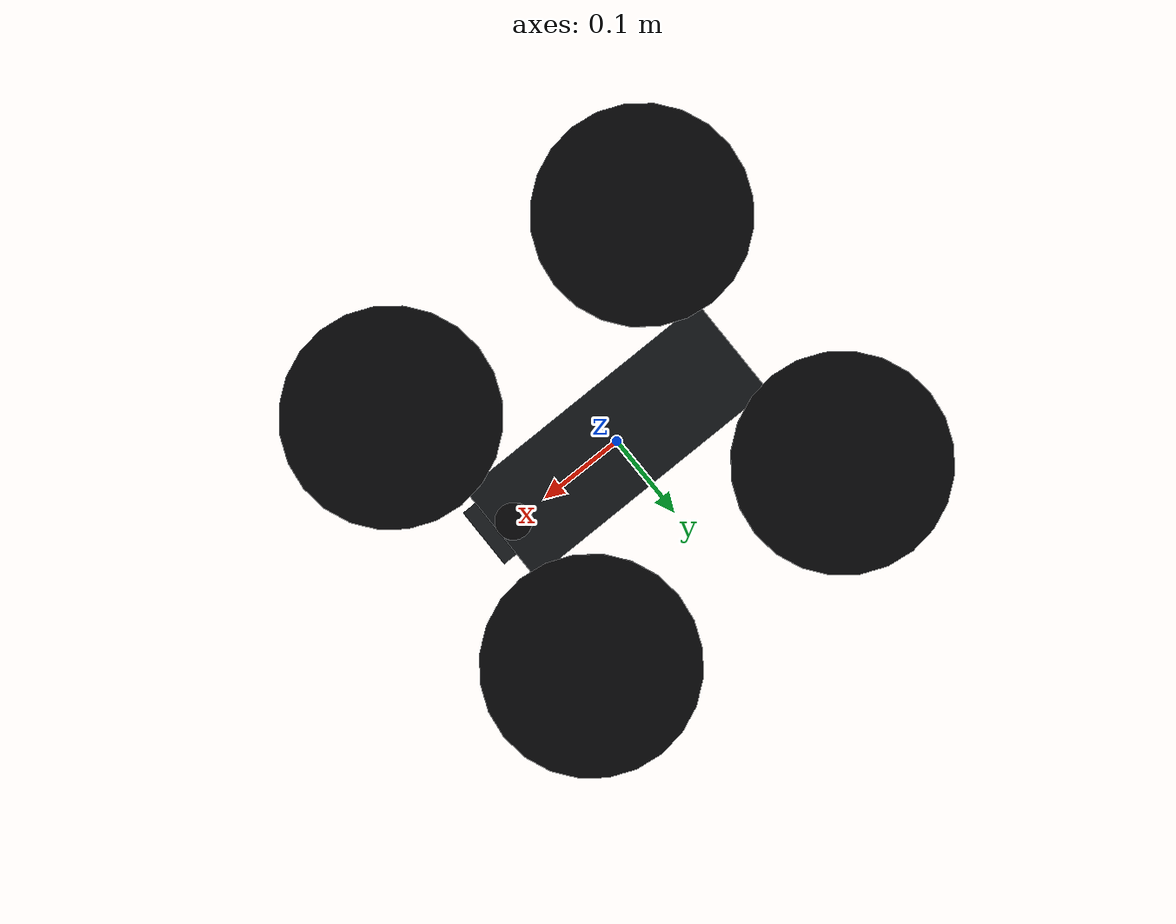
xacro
<?xml version="1.0"?>
<robot xmlns:xacro="http://www.ros.org/wiki/xacro" name="aerothon_iris">
  <xacro:arg name="airframe" default="cad"/>
  <xacro:property name="cad" value="${'$(arg airframe)' == 'cad'}"/>

  <material name="carbon"><color rgba="0.06 0.07 0.08 1"/></material>
  <material name="black"><color rgba="0.015 0.018 0.022 1"/></material>
  <material name="logitech"><color rgba="0.08 0.09 0.10 1"/></material>
  <material name="lens"><color rgba="0.03 0.30 0.52 1"/></material>
  <material name="rplidar_blue"><color rgba="0.05 0.48 0.76 1"/></material>
  <material name="rplidar_white"><color rgba="0.96 0.97 0.98 1"/></material>
  <material name="orange"><color rgba="1.0 0.42 0.03 1"/></material>

  <xacro:if value="${cad}">
    <!-- LD06 on its raised mount on the front plate; C270 pivoting at its
         own centre; hook under the dropping mechanism. -->
    <xacro:property name="scan_xyz" value="0.139 -0.002 0.082"/>
    <xacro:property name="servo_xyz" value="0.163 -0.008 0.008"/>
    <xacro:property name="pivot_xyz" value="0 0 0"/>
    <xacro:property name="lens_x" value="0.026"/>
    <xacro:property name="winch_xyz" value="0 -0.0015 -0.070"/>
    <xacro:property name="rotor_z" value="0.0706"/>
    <xacro:property name="rx" value="0.172"/>
    <xacro:property name="ry" value="0.170"/>
  </xacro:if>
  <xacro:unless value="${cad}">
    <xacro:property name="scan_xyz" value="0 0 0.19"/>
    <xacro:property name="servo_xyz" value="0.145 0 0.035"/>
    <xacro:property name="pivot_xyz" value="0.045 0 0"/>
    <xacro:property name="lens_x" value="0.093"/>
    <xacro:property name="winch_xyz" value="0 0 -0.10"/>
    <xacro:property name="rotor_z" value="0.023"/>
    <xacro:property name="rx" value="0.13"/>
    <xacro:property name="ry" value="0.21"/>
  </xacro:unless>

  <link name="base_link">
    <xacro:if value="${cad}">
      <visual><geometry><box size="0.32 0.12 0.10"/></geometry><material name="carbon"/></visual>
      <collision><geometry><box size="0.32 0.12 0.10"/></geometry></collision>
      <inertial><mass value="1.87"/><inertia ixx="0.0182" ixy="0" ixz="0" iyy="0.0257" iyz="0" izz="0.0337"/></inertial>
    </xacro:if>
    <xacro:unless value="${cad}">
      <visual>
        <geometry><mesh filename="package://ardupilot_gazebo/models/iris_with_standoffs/meshes/iris.dae"/></geometry>
        <material name="carbon"/>
      </visual>
      <collision><geometry><cylinder radius="0.30" length="0.12"/></geometry></collision>
      <inertial><mass value="1.5"/><inertia ixx="0.029" ixy="0" ixz="0" iyy="0.029" iyz="0" izz="0.055"/></inertial>
    </xacro:unless>
  </link>

  <!-- ArduPilot quad-X order: rotor_0 FR, rotor_1 BL, rotor_2 FL, rotor_3 BR. -->
  <xacro:macro name="rotor" params="name x y">
    <joint name="${name}_fixed" type="fixed"><parent link="base_link"/><child link="${name}"/><origin xyz="${x} ${y} ${rotor_z}"/></joint>
    <link name="${name}"><visual><geometry><cylinder radius="0.12" length="0.004"/></geometry><material name="black"/></visual></link>
  </xacro:macro>
  <xacro:rotor name="rotor_0" x="${rx}" y="${-ry}"/>
  <xacro:rotor name="rotor_1" x="${-rx}" y="${ry}"/>
  <xacro:rotor name="rotor_2" x="${rx}" y="${ry}"/>
  <xacro:rotor name="rotor_3" x="${-rx}" y="${-ry}"/>

  <!-- The lidar's scan origin. -->
  <joint name="rplidar_c1_mount" type="fixed"><parent link="base_link"/><child link="base_scan"/><origin xyz="${scan_xyz}"/></joint>
  <link name="base_scan">
    <visual><geometry><cylinder radius="0.02" length="0.035"/></geometry><material name="black"/></visual>
  </link>

  <!-- Front camera on one pitch servo: 0 rad forward, -1.5708 downward. -->
  <joint name="webcam_servo_mount" type="fixed"><parent link="base_link"/><child link="webcam_servo_base"/><origin xyz="${servo_xyz}"/></joint>
  <link name="webcam_servo_base"/>
  <joint name="webcam_pitch_joint" type="revolute">
    <parent link="webcam_servo_base"/><child link="webcam_link"/>
    <origin xyz="${pivot_xyz}"/><axis xyz="0 -1 0"/><limit lower="-1.65" upper="0.523599" effort="2" velocity="2"/>
  </joint>
  <link name="webcam_link">
    <visual><geometry><box size="0.030 0.071 0.030"/></geometry><material name="logitech"/></visual>
  </link>
  <joint name="camera_optical_joint" type="fixed"><parent link="webcam_link"/><child link="camera_optical_frame"/><origin xyz="${lens_x} 0 0" rpy="-1.570796 0 -1.570796"/></joint>
  <link name="camera_optical_frame"/>

  <joint name="winch_joint" type="fixed"><parent link="base_link"/><child link="winch_link"/><origin xyz="${winch_xyz}"/></joint>
  <link name="winch_link"><visual><geometry><cylinder radius="0.03" length="0.05"/></geometry><material name="orange"/></visual></link>
</robot>
